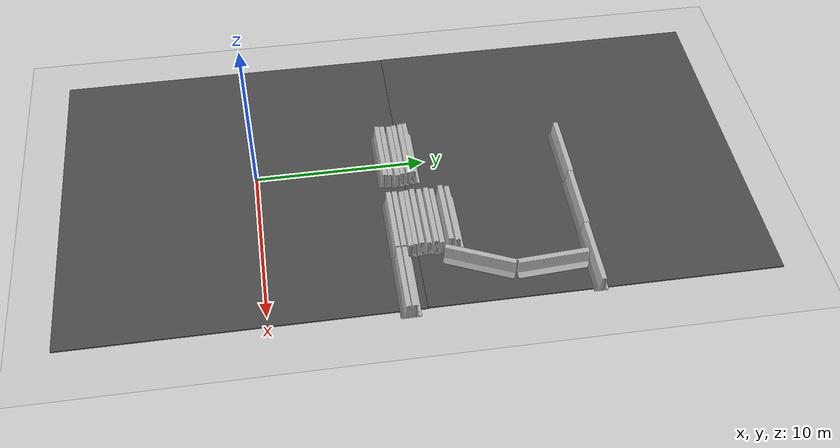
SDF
<sdf version="1.6">
 <world name="default">
  <model name="ground_plane">
   <static>1</static>
   <link name="link">
    <collision name="collision">
     <geometry><plane><normal>0 0 1</normal><size>100 100</size></plane></geometry>
     <surface><friction><ode><mu>100</mu><mu2>50</mu2></ode></friction></surface>
    </collision>
    <visual name="visual">
     <cast_shadows>0</cast_shadows>
     <geometry><plane><normal>0 0 1</normal><size>100 100</size></plane></geometry>
     <material>
      <script><uri>file://media/materials/scripts/gazebo.material</uri><name>Gazebo/Grey</name></script>
     </material>
    </visual>
   </link>
  </model>
  <model name="asphalt_plane">
   <static>1</static>
   <link name="link">
    <collision name="collision"><geometry><box><size>20 20 0.1</size></box></geometry></collision>
    <visual name="visual">
     <cast_shadows>0</cast_shadows>
     <geometry><box><size>20 20 0.1</size></box></geometry>
     <material>
      <script>
       <uri>model://asphalt_plane/materials/scripts</uri>
       <uri>model://asphalt_plane/materials/textures</uri>
       <name>vrc/asphalt</name>
      </script>
     </material>
    </visual>
   </link>
   <pose>0.654583 -1.36411 0 0 -0 0</pose>
  </model>
  <model name="jersey_barrier_0">
   <static>1</static>
   <link name="link">
    <visual name="visual">
     <geometry><mesh><uri>model://jersey_barrier/meshes/jersey_barrier.dae</uri></mesh></geometry>
    </visual>
    <collision name="upright">
     <pose>0 0 0.5715 0 -0 0</pose>
     <geometry><box><size>4.06542 0.3063 1.143</size></box></geometry>
    </collision>
    <collision name="base">
     <pose>0 0 0.032258 0 -0 0</pose>
     <geometry><box><size>4.06542 0.8107 0.064516</size></box></geometry>
    </collision>
    <collision name="base2">
     <pose>0 0 0.1 0 -0 0</pose>
     <geometry><box><size>4.06542 0.65 0.1</size></box></geometry>
    </collision>
    <collision name="base3">
     <pose>0 0 0.2 0 -0 0</pose>
     <geometry><box><size>4.06542 0.5 0.1</size></box></geometry>
    </collision>
    <collision name="left-angle">
     <pose>0 -0.224 0.2401 0.9 -0 0</pose>
     <geometry><box><size>4.06542 0.5 0.064516</size></box></geometry>
    </collision>
    <collision name="right-angle">
     <pose>0 0.224 0.2401 -0.9 0 0</pose>
     <geometry><box><size>4.06542 0.5 0.064516</size></box></geometry>
    </collision>
   </link>
   <pose>-0.26554 7.49082 0 0 -0 0</pose>
  </model>
  <model name="asphalt_plane_0">
   <static>1</static>
   <link name="link">
    <collision name="collision"><geometry><box><size>20 20 0.1</size></box></geometry></collision>
    <visual name="visual">
     <cast_shadows>0</cast_shadows>
     <geometry><box><size>20 20 0.1</size></box></geometry>
     <material>
      <script>
       <uri>model://asphalt_plane/materials/scripts</uri>
       <uri>model://asphalt_plane/materials/textures</uri>
       <name>vrc/asphalt</name>
      </script>
     </material>
    </visual>
   </link>
   <pose>0.622518 18.6487 0 0 -0 0</pose>
  </model>
  <model name="jersey_barrier_1">
   <static>1</static>
   <link name="link">
    <visual name="visual">
     <geometry><mesh><uri>model://jersey_barrier/meshes/jersey_barrier.dae</uri></mesh></geometry>
    </visual>
    <collision name="upright">
     <pose>0 0 0.5715 0 -0 0</pose>
     <geometry><box><size>4.06542 0.3063 1.143</size></box></geometry>
    </collision>
    <collision name="base">
     <pose>0 0 0.032258 0 -0 0</pose>
     <geometry><box><size>4.06542 0.8107 0.064516</size></box></geometry>
    </collision>
    <collision name="base2">
     <pose>0 0 0.1 0 -0 0</pose>
     <geometry><box><size>4.06542 0.65 0.1</size></box></geometry>
    </collision>
    <collision name="base3">
     <pose>0 0 0.2 0 -0 0</pose>
     <geometry><box><size>4.06542 0.5 0.1</size></box></geometry>
    </collision>
    <collision name="left-angle">
     <pose>0 -0.224 0.2401 0.9 -0 0</pose>
     <geometry><box><size>4.06542 0.5 0.064516</size></box></geometry>
    </collision>
    <collision name="right-angle">
     <pose>0 0.224 0.2401 -0.9 0 0</pose>
     <geometry><box><size>4.06542 0.5 0.064516</size></box></geometry>
    </collision>
   </link>
   <pose>5.06217 7.48862 0 0 -0 0</pose>
  </model>
  <model name="jersey_barrier_3">
   <static>1</static>
   <link name="link">
    <visual name="visual">
     <geometry><mesh><uri>model://jersey_barrier/meshes/jersey_barrier.dae</uri></mesh></geometry>
    </visual>
    <collision name="upright">
     <pose>0 0 0.5715 0 -0 0</pose>
     <geometry><box><size>4.06542 0.3063 1.143</size></box></geometry>
    </collision>
    <collision name="base">
     <pose>0 0 0.032258 0 -0 0</pose>
     <geometry><box><size>4.06542 0.8107 0.064516</size></box></geometry>
    </collision>
    <collision name="base2">
     <pose>0 0 0.1 0 -0 0</pose>
     <geometry><box><size>4.06542 0.65 0.1</size></box></geometry>
    </collision>
    <collision name="base3">
     <pose>0 0 0.2 0 -0 0</pose>
     <geometry><box><size>4.06542 0.5 0.1</size></box></geometry>
    </collision>
    <collision name="left-angle">
     <pose>0 -0.224 0.2401 0.9 -0 0</pose>
     <geometry><box><size>4.06542 0.5 0.064516</size></box></geometry>
    </collision>
    <collision name="right-angle">
     <pose>0 0.224 0.2401 -0.9 0 0</pose>
     <geometry><box><size>4.06542 0.5 0.064516</size></box></geometry>
    </collision>
   </link>
   <pose>-0.218989 7.79919 0 0 -0 0</pose>
  </model>
  <model name="jersey_barrier_4">
   <static>1</static>
   <link name="link">
    <visual name="visual">
     <geometry><mesh><uri>model://jersey_barrier/meshes/jersey_barrier.dae</uri></mesh></geometry>
    </visual>
    <collision name="upright">
     <pose>0 0 0.5715 0 -0 0</pose>
     <geometry><box><size>4.06542 0.3063 1.143</size></box></geometry>
    </collision>
    <collision name="base">
     <pose>0 0 0.032258 0 -0 0</pose>
     <geometry><box><size>4.06542 0.8107 0.064516</size></box></geometry>
    </collision>
    <collision name="base2">
     <pose>0 0 0.1 0 -0 0</pose>
     <geometry><box><size>4.06542 0.65 0.1</size></box></geometry>
    </collision>
    <collision name="base3">
     <pose>0 0 0.2 0 -0 0</pose>
     <geometry><box><size>4.06542 0.5 0.1</size></box></geometry>
    </collision>
    <collision name="left-angle">
     <pose>0 -0.224 0.2401 0.9 -0 0</pose>
     <geometry><box><size>4.06542 0.5 0.064516</size></box></geometry>
    </collision>
    <collision name="right-angle">
     <pose>0 0.224 0.2401 -0.9 0 0</pose>
     <geometry><box><size>4.06542 0.5 0.064516</size></box></geometry>
    </collision>
   </link>
   <pose>5.05394 7.83942 0 0 -0 0</pose>
  </model>
  <model name="jersey_barrier_5">
   <static>1</static>
   <link name="link">
    <visual name="visual">
     <geometry><mesh><uri>model://jersey_barrier/meshes/jersey_barrier.dae</uri></mesh></geometry>
    </visual>
    <collision name="upright">
     <pose>0 0 0.5715 0 -0 0</pose>
     <geometry><box><size>4.06542 0.3063 1.143</size></box></geometry>
    </collision>
    <collision name="base">
     <pose>0 0 0.032258 0 -0 0</pose>
     <geometry><box><size>4.06542 0.8107 0.064516</size></box></geometry>
    </collision>
    <collision name="base2">
     <pose>0 0 0.1 0 -0 0</pose>
     <geometry><box><size>4.06542 0.65 0.1</size></box></geometry>
    </collision>
    <collision name="base3">
     <pose>0 0 0.2 0 -0 0</pose>
     <geometry><box><size>4.06542 0.5 0.1</size></box></geometry>
    </collision>
    <collision name="left-angle">
     <pose>0 -0.224 0.2401 0.9 -0 0</pose>
     <geometry><box><size>4.06542 0.5 0.064516</size></box></geometry>
    </collision>
    <collision name="right-angle">
     <pose>0 0.224 0.2401 -0.9 0 0</pose>
     <geometry><box><size>4.06542 0.5 0.064516</size></box></geometry>
    </collision>
   </link>
   <pose>9.15621 7.50084 0 0 -0 0</pose>
  </model>
  <model name="jersey_barrier_6">
   <static>1</static>
   <link name="link">
    <visual name="visual">
     <geometry><mesh><uri>model://jersey_barrier/meshes/jersey_barrier.dae</uri></mesh></geometry>
    </visual>
    <collision name="upright">
     <pose>0 0 0.5715 0 -0 0</pose>
     <geometry><box><size>4.06542 0.3063 1.143</size></box></geometry>
    </collision>
    <collision name="base">
     <pose>0 0 0.032258 0 -0 0</pose>
     <geometry><box><size>4.06542 0.8107 0.064516</size></box></geometry>
    </collision>
    <collision name="base2">
     <pose>0 0 0.1 0 -0 0</pose>
     <geometry><box><size>4.06542 0.65 0.1</size></box></geometry>
    </collision>
    <collision name="base3">
     <pose>0 0 0.2 0 -0 0</pose>
     <geometry><box><size>4.06542 0.5 0.1</size></box></geometry>
    </collision>
    <collision name="left-angle">
     <pose>0 -0.224 0.2401 0.9 -0 0</pose>
     <geometry><box><size>4.06542 0.5 0.064516</size></box></geometry>
    </collision>
    <collision name="right-angle">
     <pose>0 0.224 0.2401 -0.9 0 0</pose>
     <geometry><box><size>4.06542 0.5 0.064516</size></box></geometry>
    </collision>
   </link>
   <pose>9.14773 7.8464 0 0 -0 0</pose>
  </model>
  <model name="jersey_barrier_9">
   <static>1</static>
   <link name="link">
    <visual name="visual">
     <geometry><mesh><uri>model://jersey_barrier/meshes/jersey_barrier.dae</uri></mesh></geometry>
    </visual>
    <collision name="upright">
     <pose>0 0 0.5715 0 -0 0</pose>
     <geometry><box><size>4.06542 0.3063 1.143</size></box></geometry>
    </collision>
    <collision name="base">
     <pose>0 0 0.032258 0 -0 0</pose>
     <geometry><box><size>4.06542 0.8107 0.064516</size></box></geometry>
    </collision>
    <collision name="base2">
     <pose>0 0 0.1 0 -0 0</pose>
     <geometry><box><size>4.06542 0.65 0.1</size></box></geometry>
    </collision>
    <collision name="base3">
     <pose>0 0 0.2 0 -0 0</pose>
     <geometry><box><size>4.06542 0.5 0.1</size></box></geometry>
    </collision>
    <collision name="left-angle">
     <pose>0 -0.224 0.2401 0.9 -0 0</pose>
     <geometry><box><size>4.06542 0.5 0.064516</size></box></geometry>
    </collision>
    <collision name="right-angle">
     <pose>0 0.224 0.2401 -0.9 0 0</pose>
     <geometry><box><size>4.06542 0.5 0.064516</size></box></geometry>
    </collision>
   </link>
   <pose>-0.160878 8.21096 0 0 -0 0</pose>
  </model>
  <model name="jersey_barrier_10">
   <static>1</static>
   <link name="link">
    <visual name="visual">
     <geometry><mesh><uri>model://jersey_barrier/meshes/jersey_barrier.dae</uri></mesh></geometry>
    </visual>
    <collision name="upright">
     <pose>0 0 0.5715 0 -0 0</pose>
     <geometry><box><size>4.06542 0.3063 1.143</size></box></geometry>
    </collision>
    <collision name="base">
     <pose>0 0 0.032258 0 -0 0</pose>
     <geometry><box><size>4.06542 0.8107 0.064516</size></box></geometry>
    </collision>
    <collision name="base2">
     <pose>0 0 0.1 0 -0 0</pose>
     <geometry><box><size>4.06542 0.65 0.1</size></box></geometry>
    </collision>
    <collision name="base3">
     <pose>0 0 0.2 0 -0 0</pose>
     <geometry><box><size>4.06542 0.5 0.1</size></box></geometry>
    </collision>
    <collision name="left-angle">
     <pose>0 -0.224 0.2401 0.9 -0 0</pose>
     <geometry><box><size>4.06542 0.5 0.064516</size></box></geometry>
    </collision>
    <collision name="right-angle">
     <pose>0 0.224 0.2401 -0.9 0 0</pose>
     <geometry><box><size>4.06542 0.5 0.064516</size></box></geometry>
    </collision>
   </link>
   <pose>5.11746 8.2146 0 0 -0 0</pose>
  </model>
  <model name="jersey_barrier_11">
   <static>1</static>
   <link name="link">
    <visual name="visual">
     <geometry><mesh><uri>model://jersey_barrier/meshes/jersey_barrier.dae</uri></mesh></geometry>
    </visual>
    <collision name="upright">
     <pose>0 0 0.5715 0 -0 0</pose>
     <geometry><box><size>4.06542 0.3063 1.143</size></box></geometry>
    </collision>
    <collision name="base">
     <pose>0 0 0.032258 0 -0 0</pose>
     <geometry><box><size>4.06542 0.8107 0.064516</size></box></geometry>
    </collision>
    <collision name="base2">
     <pose>0 0 0.1 0 -0 0</pose>
     <geometry><box><size>4.06542 0.65 0.1</size></box></geometry>
    </collision>
    <collision name="base3">
     <pose>0 0 0.2 0 -0 0</pose>
     <geometry><box><size>4.06542 0.5 0.1</size></box></geometry>
    </collision>
    <collision name="left-angle">
     <pose>0 -0.224 0.2401 0.9 -0 0</pose>
     <geometry><box><size>4.06542 0.5 0.064516</size></box></geometry>
    </collision>
    <collision name="right-angle">
     <pose>0 0.224 0.2401 -0.9 0 0</pose>
     <geometry><box><size>4.06542 0.5 0.064516</size></box></geometry>
    </collision>
   </link>
   <pose>-0.226159 8.5046 0 0 -0 0</pose>
  </model>
  <model name="jersey_barrier_12">
   <static>1</static>
   <link name="link">
    <visual name="visual">
     <geometry><mesh><uri>model://jersey_barrier/meshes/jersey_barrier.dae</uri></mesh></geometry>
    </visual>
    <collision name="upright">
     <pose>0 0 0.5715 0 -0 0</pose>
     <geometry><box><size>4.06542 0.3063 1.143</size></box></geometry>
    </collision>
    <collision name="base">
     <pose>0 0 0.032258 0 -0 0</pose>
     <geometry><box><size>4.06542 0.8107 0.064516</size></box></geometry>
    </collision>
    <collision name="base2">
     <pose>0 0 0.1 0 -0 0</pose>
     <geometry><box><size>4.06542 0.65 0.1</size></box></geometry>
    </collision>
    <collision name="base3">
     <pose>0 0 0.2 0 -0 0</pose>
     <geometry><box><size>4.06542 0.5 0.1</size></box></geometry>
    </collision>
    <collision name="left-angle">
     <pose>0 -0.224 0.2401 0.9 -0 0</pose>
     <geometry><box><size>4.06542 0.5 0.064516</size></box></geometry>
    </collision>
    <collision name="right-angle">
     <pose>0 0.224 0.2401 -0.9 0 0</pose>
     <geometry><box><size>4.06542 0.5 0.064516</size></box></geometry>
    </collision>
   </link>
   <pose>5.07498 8.4879 0 0 -0 0</pose>
  </model>
  <model name="jersey_barrier_13">
   <static>1</static>
   <link name="link">
    <visual name="visual">
     <geometry><mesh><uri>model://jersey_barrier/meshes/jersey_barrier.dae</uri></mesh></geometry>
    </visual>
    <collision name="upright">
     <pose>0 0 0.5715 0 -0 0</pose>
     <geometry><box><size>4.06542 0.3063 1.143</size></box></geometry>
    </collision>
    <collision name="base">
     <pose>0 0 0.032258 0 -0 0</pose>
     <geometry><box><size>4.06542 0.8107 0.064516</size></box></geometry>
    </collision>
    <collision name="base2">
     <pose>0 0 0.1 0 -0 0</pose>
     <geometry><box><size>4.06542 0.65 0.1</size></box></geometry>
    </collision>
    <collision name="base3">
     <pose>0 0 0.2 0 -0 0</pose>
     <geometry><box><size>4.06542 0.5 0.1</size></box></geometry>
    </collision>
    <collision name="left-angle">
     <pose>0 -0.224 0.2401 0.9 -0 0</pose>
     <geometry><box><size>4.06542 0.5 0.064516</size></box></geometry>
    </collision>
    <collision name="right-angle">
     <pose>0 0.224 0.2401 -0.9 0 0</pose>
     <geometry><box><size>4.06542 0.5 0.064516</size></box></geometry>
    </collision>
   </link>
   <pose>-0.273546 8.88204 0 0 -0 0</pose>
  </model>
  <model name="jersey_barrier_14">
   <static>1</static>
   <link name="link">
    <visual name="visual">
     <geometry><mesh><uri>model://jersey_barrier/meshes/jersey_barrier.dae</uri></mesh></geometry>
    </visual>
    <collision name="upright">
     <pose>0 0 0.5715 0 -0 0</pose>
     <geometry><box><size>4.06542 0.3063 1.143</size></box></geometry>
    </collision>
    <collision name="base">
     <pose>0 0 0.032258 0 -0 0</pose>
     <geometry><box><size>4.06542 0.8107 0.064516</size></box></geometry>
    </collision>
    <collision name="base2">
     <pose>0 0 0.1 0 -0 0</pose>
     <geometry><box><size>4.06542 0.65 0.1</size></box></geometry>
    </collision>
    <collision name="base3">
     <pose>0 0 0.2 0 -0 0</pose>
     <geometry><box><size>4.06542 0.5 0.1</size></box></geometry>
    </collision>
    <collision name="left-angle">
     <pose>0 -0.224 0.2401 0.9 -0 0</pose>
     <geometry><box><size>4.06542 0.5 0.064516</size></box></geometry>
    </collision>
    <collision name="right-angle">
     <pose>0 0.224 0.2401 -0.9 0 0</pose>
     <geometry><box><size>4.06542 0.5 0.064516</size></box></geometry>
    </collision>
   </link>
   <pose>-0.303169 9.16443 0 0 -0 0</pose>
  </model>
  <model name="jersey_barrier_15">
   <static>1</static>
   <link name="link">
    <visual name="visual">
     <geometry><mesh><uri>model://jersey_barrier/meshes/jersey_barrier.dae</uri></mesh></geometry>
    </visual>
    <collision name="upright">
     <pose>0 0 0.5715 0 -0 0</pose>
     <geometry><box><size>4.06542 0.3063 1.143</size></box></geometry>
    </collision>
    <collision name="base">
     <pose>0 0 0.032258 0 -0 0</pose>
     <geometry><box><size>4.06542 0.8107 0.064516</size></box></geometry>
    </collision>
    <collision name="base2">
     <pose>0 0 0.1 0 -0 0</pose>
     <geometry><box><size>4.06542 0.65 0.1</size></box></geometry>
    </collision>
    <collision name="base3">
     <pose>0 0 0.2 0 -0 0</pose>
     <geometry><box><size>4.06542 0.5 0.1</size></box></geometry>
    </collision>
    <collision name="left-angle">
     <pose>0 -0.224 0.2401 0.9 -0 0</pose>
     <geometry><box><size>4.06542 0.5 0.064516</size></box></geometry>
    </collision>
    <collision name="right-angle">
     <pose>0 0.224 0.2401 -0.9 0 0</pose>
     <geometry><box><size>4.06542 0.5 0.064516</size></box></geometry>
    </collision>
   </link>
   <pose>5.02158 8.85121 0 0 -0 0</pose>
  </model>
  <model name="jersey_barrier_16">
   <static>1</static>
   <link name="link">
    <visual name="visual">
     <geometry><mesh><uri>model://jersey_barrier/meshes/jersey_barrier.dae</uri></mesh></geometry>
    </visual>
    <collision name="upright">
     <pose>0 0 0.5715 0 -0 0</pose>
     <geometry><box><size>4.06542 0.3063 1.143</size></box></geometry>
    </collision>
    <collision name="base">
     <pose>0 0 0.032258 0 -0 0</pose>
     <geometry><box><size>4.06542 0.8107 0.064516</size></box></geometry>
    </collision>
    <collision name="base2">
     <pose>0 0 0.1 0 -0 0</pose>
     <geometry><box><size>4.06542 0.65 0.1</size></box></geometry>
    </collision>
    <collision name="base3">
     <pose>0 0 0.2 0 -0 0</pose>
     <geometry><box><size>4.06542 0.5 0.1</size></box></geometry>
    </collision>
    <collision name="left-angle">
     <pose>0 -0.224 0.2401 0.9 -0 0</pose>
     <geometry><box><size>4.06542 0.5 0.064516</size></box></geometry>
    </collision>
    <collision name="right-angle">
     <pose>0 0.224 0.2401 -0.9 0 0</pose>
     <geometry><box><size>4.06542 0.5 0.064516</size></box></geometry>
    </collision>
   </link>
   <pose>5.06155 9.2552 0 0 -0 0</pose>
  </model>
  <model name="jersey_barrier_18">
   <static>1</static>
   <link name="link">
    <visual name="visual">
     <geometry><mesh><uri>model://jersey_barrier/meshes/jersey_barrier.dae</uri></mesh></geometry>
    </visual>
    <collision name="upright">
     <pose>0 0 0.5715 0 -0 0</pose>
     <geometry><box><size>4.06542 0.3063 1.143</size></box></geometry>
    </collision>
    <collision name="base">
     <pose>0 0 0.032258 0 -0 0</pose>
     <geometry><box><size>4.06542 0.8107 0.064516</size></box></geometry>
    </collision>
    <collision name="base2">
     <pose>0 0 0.1 0 -0 0</pose>
     <geometry><box><size>4.06542 0.65 0.1</size></box></geometry>
    </collision>
    <collision name="base3">
     <pose>0 0 0.2 0 -0 0</pose>
     <geometry><box><size>4.06542 0.5 0.1</size></box></geometry>
    </collision>
    <collision name="left-angle">
     <pose>0 -0.224 0.2401 0.9 -0 0</pose>
     <geometry><box><size>4.06542 0.5 0.064516</size></box></geometry>
    </collision>
    <collision name="right-angle">
     <pose>0 0.224 0.2401 -0.9 0 0</pose>
     <geometry><box><size>4.06542 0.5 0.064516</size></box></geometry>
    </collision>
   </link>
   <pose>5.0223 9.65683 0 0 -0 0</pose>
  </model>
  <model name="jersey_barrier_20">
   <static>1</static>
   <link name="link">
    <visual name="visual">
     <geometry><mesh><uri>model://jersey_barrier/meshes/jersey_barrier.dae</uri></mesh></geometry>
    </visual>
    <collision name="upright">
     <pose>0 0 0.5715 0 -0 0</pose>
     <geometry><box><size>4.06542 0.3063 1.143</size></box></geometry>
    </collision>
    <collision name="base">
     <pose>0 0 0.032258 0 -0 0</pose>
     <geometry><box><size>4.06542 0.8107 0.064516</size></box></geometry>
    </collision>
    <collision name="base2">
     <pose>0 0 0.1 0 -0 0</pose>
     <geometry><box><size>4.06542 0.65 0.1</size></box></geometry>
    </collision>
    <collision name="base3">
     <pose>0 0 0.2 0 -0 0</pose>
     <geometry><box><size>4.06542 0.5 0.1</size></box></geometry>
    </collision>
    <collision name="left-angle">
     <pose>0 -0.224 0.2401 0.9 -0 0</pose>
     <geometry><box><size>4.06542 0.5 0.064516</size></box></geometry>
    </collision>
    <collision name="right-angle">
     <pose>0 0.224 0.2401 -0.9 0 0</pose>
     <geometry><box><size>4.06542 0.5 0.064516</size></box></geometry>
    </collision>
   </link>
   <pose>5.14389 9.9739 0 0 -0 0</pose>
  </model>
  <model name="jersey_barrier_22">
   <static>1</static>
   <link name="link">
    <visual name="visual">
     <geometry><mesh><uri>model://jersey_barrier/meshes/jersey_barrier.dae</uri></mesh></geometry>
    </visual>
    <collision name="upright">
     <pose>0 0 0.5715 0 -0 0</pose>
     <geometry><box><size>4.06542 0.3063 1.143</size></box></geometry>
    </collision>
    <collision name="base">
     <pose>0 0 0.032258 0 -0 0</pose>
     <geometry><box><size>4.06542 0.8107 0.064516</size></box></geometry>
    </collision>
    <collision name="base2">
     <pose>0 0 0.1 0 -0 0</pose>
     <geometry><box><size>4.06542 0.65 0.1</size></box></geometry>
    </collision>
    <collision name="base3">
     <pose>0 0 0.2 0 -0 0</pose>
     <geometry><box><size>4.06542 0.5 0.1</size></box></geometry>
    </collision>
    <collision name="left-angle">
     <pose>0 -0.224 0.2401 0.9 -0 0</pose>
     <geometry><box><size>4.06542 0.5 0.064516</size></box></geometry>
    </collision>
    <collision name="right-angle">
     <pose>0 0.224 0.2401 -0.9 0 0</pose>
     <geometry><box><size>4.06542 0.5 0.064516</size></box></geometry>
    </collision>
   </link>
   <pose>4.95196 10.5143 0 0 -0 0</pose>
  </model>
  <model name="jersey_barrier_24">
   <static>1</static>
   <link name="link">
    <visual name="visual">
     <geometry><mesh><uri>model://jersey_barrier/meshes/jersey_barrier.dae</uri></mesh></geometry>
    </visual>
    <collision name="upright">
     <pose>0 0 0.5715 0 -0 0</pose>
     <geometry><box><size>4.06542 0.3063 1.143</size></box></geometry>
    </collision>
    <collision name="base">
     <pose>0 0 0.032258 0 -0 0</pose>
     <geometry><box><size>4.06542 0.8107 0.064516</size></box></geometry>
    </collision>
    <collision name="base2">
     <pose>0 0 0.1 0 -0 0</pose>
     <geometry><box><size>4.06542 0.65 0.1</size></box></geometry>
    </collision>
    <collision name="base3">
     <pose>0 0 0.2 0 -0 0</pose>
     <geometry><box><size>4.06542 0.5 0.1</size></box></geometry>
    </collision>
    <collision name="left-angle">
     <pose>0 -0.224 0.2401 0.9 -0 0</pose>
     <geometry><box><size>4.06542 0.5 0.064516</size></box></geometry>
    </collision>
    <collision name="right-angle">
     <pose>0 0.224 0.2401 -0.9 0 0</pose>
     <geometry><box><size>4.06542 0.5 0.064516</size></box></geometry>
    </collision>
   </link>
   <pose>5.05944 10.8858 0 0 -0 0</pose>
  </model>
  <model name="jersey_barrier_26">
   <static>1</static>
   <link name="link">
    <visual name="visual">
     <geometry><mesh><uri>model://jersey_barrier/meshes/jersey_barrier.dae</uri></mesh></geometry>
    </visual>
    <collision name="upright">
     <pose>0 0 0.5715 0 -0 0</pose>
     <geometry><box><size>4.06542 0.3063 1.143</size></box></geometry>
    </collision>
    <collision name="base">
     <pose>0 0 0.032258 0 -0 0</pose>
     <geometry><box><size>4.06542 0.8107 0.064516</size></box></geometry>
    </collision>
    <collision name="base2">
     <pose>0 0 0.1 0 -0 0</pose>
     <geometry><box><size>4.06542 0.65 0.1</size></box></geometry>
    </collision>
    <collision name="base3">
     <pose>0 0 0.2 0 -0 0</pose>
     <geometry><box><size>4.06542 0.5 0.1</size></box></geometry>
    </collision>
    <collision name="left-angle">
     <pose>0 -0.224 0.2401 0.9 -0 0</pose>
     <geometry><box><size>4.06542 0.5 0.064516</size></box></geometry>
    </collision>
    <collision name="right-angle">
     <pose>0 0.224 0.2401 -0.9 0 0</pose>
     <geometry><box><size>4.06542 0.5 0.064516</size></box></geometry>
    </collision>
   </link>
   <pose>8.8391 18.2084 0 0 -0 0</pose>
  </model>
  <model name="jersey_barrier_27">
   <static>1</static>
   <link name="link">
    <visual name="visual">
     <geometry><mesh><uri>model://jersey_barrier/meshes/jersey_barrier.dae</uri></mesh></geometry>
    </visual>
    <collision name="upright">
     <pose>0 0 0.5715 0 -0 0</pose>
     <geometry><box><size>4.06542 0.3063 1.143</size></box></geometry>
    </collision>
    <collision name="base">
     <pose>0 0 0.032258 0 -0 0</pose>
     <geometry><box><size>4.06542 0.8107 0.064516</size></box></geometry>
    </collision>
    <collision name="base2">
     <pose>0 0 0.1 0 -0 0</pose>
     <geometry><box><size>4.06542 0.65 0.1</size></box></geometry>
    </collision>
    <collision name="base3">
     <pose>0 0 0.2 0 -0 0</pose>
     <geometry><box><size>4.06542 0.5 0.1</size></box></geometry>
    </collision>
    <collision name="left-angle">
     <pose>0 -0.224 0.2401 0.9 -0 0</pose>
     <geometry><box><size>4.06542 0.5 0.064516</size></box></geometry>
    </collision>
    <collision name="right-angle">
     <pose>0 0.224 0.2401 -0.9 0 0</pose>
     <geometry><box><size>4.06542 0.5 0.064516</size></box></geometry>
    </collision>
   </link>
   <pose>4.8814 18.2538 0 0 -0 0</pose>
  </model>
  <model name="jersey_barrier_28">
   <static>1</static>
   <link name="link">
    <visual name="visual">
     <geometry><mesh><uri>model://jersey_barrier/meshes/jersey_barrier.dae</uri></mesh></geometry>
    </visual>
    <collision name="upright">
     <pose>0 0 0.5715 0 -0 0</pose>
     <geometry><box><size>4.06542 0.3063 1.143</size></box></geometry>
    </collision>
    <collision name="base">
     <pose>0 0 0.032258 0 -0 0</pose>
     <geometry><box><size>4.06542 0.8107 0.064516</size></box></geometry>
    </collision>
    <collision name="base2">
     <pose>0 0 0.1 0 -0 0</pose>
     <geometry><box><size>4.06542 0.65 0.1</size></box></geometry>
    </collision>
    <collision name="base3">
     <pose>0 0 0.2 0 -0 0</pose>
     <geometry><box><size>4.06542 0.5 0.1</size></box></geometry>
    </collision>
    <collision name="left-angle">
     <pose>0 -0.224 0.2401 0.9 -0 0</pose>
     <geometry><box><size>4.06542 0.5 0.064516</size></box></geometry>
    </collision>
    <collision name="right-angle">
     <pose>0 0.224 0.2401 -0.9 0 0</pose>
     <geometry><box><size>4.06542 0.5 0.064516</size></box></geometry>
    </collision>
   </link>
   <pose>0.924134 18.299 0 0 -0 0</pose>
  </model>
  <model name="jersey_barrier_43">
   <static>1</static>
   <link name="link">
    <visual name="visual">
     <geometry><mesh><uri>model://jersey_barrier/meshes/jersey_barrier.dae</uri></mesh></geometry>
    </visual>
    <collision name="upright">
     <pose>0 0 0.5715 0 -0 0</pose>
     <geometry><box><size>4.06542 0.3063 1.143</size></box></geometry>
    </collision>
    <collision name="base">
     <pose>0 0 0.032258 0 -0 0</pose>
     <geometry><box><size>4.06542 0.8107 0.064516</size></box></geometry>
    </collision>
    <collision name="base2">
     <pose>0 0 0.1 0 -0 0</pose>
     <geometry><box><size>4.06542 0.65 0.1</size></box></geometry>
    </collision>
    <collision name="base3">
     <pose>0 0 0.2 0 -0 0</pose>
     <geometry><box><size>4.06542 0.5 0.1</size></box></geometry>
    </collision>
    <collision name="left-angle">
     <pose>0 -0.224 0.2401 0.9 -0 0</pose>
     <geometry><box><size>4.06542 0.5 0.064516</size></box></geometry>
    </collision>
    <collision name="right-angle">
     <pose>0 0.224 0.2401 -0.9 0 0</pose>
     <geometry><box><size>4.06542 0.5 0.064516</size></box></geometry>
    </collision>
   </link>
   <pose>8.88458 15.8719 0 0 -0 1.63066</pose>
  </model>
  <model name="jersey_barrier_44">
   <static>1</static>
   <link name="link">
    <visual name="visual">
     <geometry><mesh><uri>model://jersey_barrier/meshes/jersey_barrier.dae</uri></mesh></geometry>
    </visual>
    <collision name="upright">
     <pose>0 0 0.5715 0 -0 0</pose>
     <geometry><box><size>4.06542 0.3063 1.143</size></box></geometry>
    </collision>
    <collision name="base">
     <pose>0 0 0.032258 0 -0 0</pose>
     <geometry><box><size>4.06542 0.8107 0.064516</size></box></geometry>
    </collision>
    <collision name="base2">
     <pose>0 0 0.1 0 -0 0</pose>
     <geometry><box><size>4.06542 0.65 0.1</size></box></geometry>
    </collision>
    <collision name="base3">
     <pose>0 0 0.2 0 -0 0</pose>
     <geometry><box><size>4.06542 0.5 0.1</size></box></geometry>
    </collision>
    <collision name="left-angle">
     <pose>0 -0.224 0.2401 0.9 -0 0</pose>
     <geometry><box><size>4.06542 0.5 0.064516</size></box></geometry>
    </collision>
    <collision name="right-angle">
     <pose>0 0.224 0.2401 -0.9 0 0</pose>
     <geometry><box><size>4.06542 0.5 0.064516</size></box></geometry>
    </collision>
   </link>
   <pose>8.2101 11.9302 0 0 -0 1.15776</pose>
  </model>
 </world>
</sdf>
